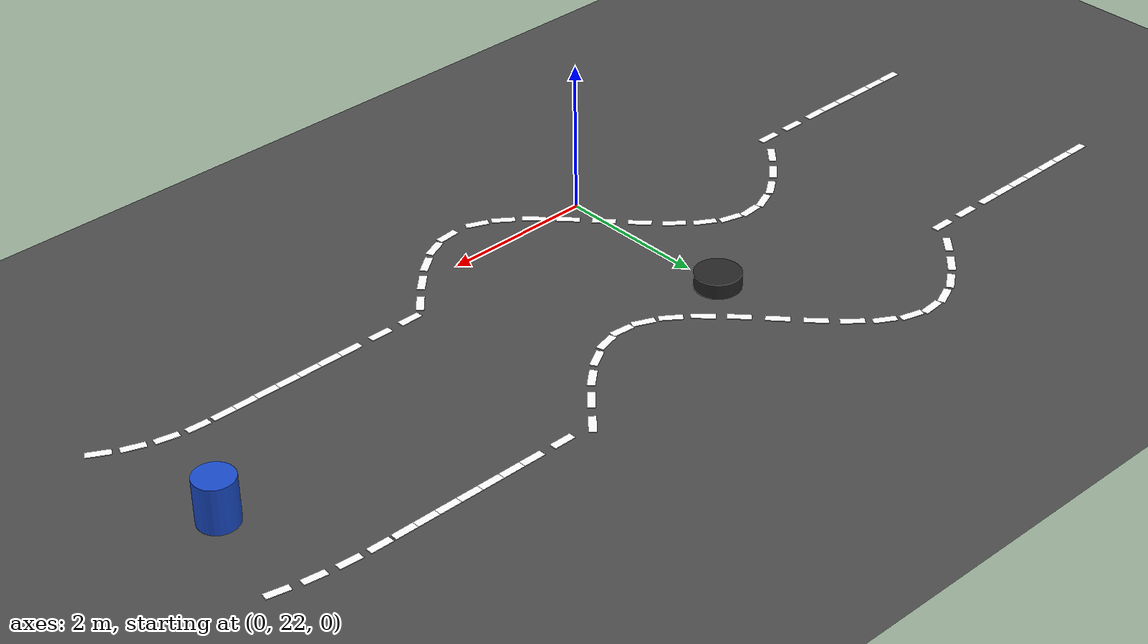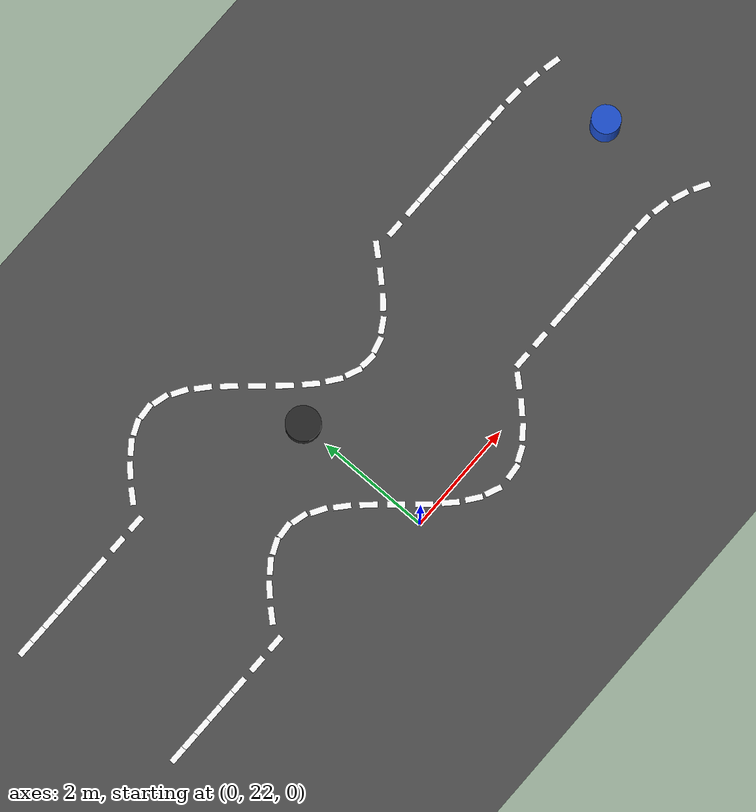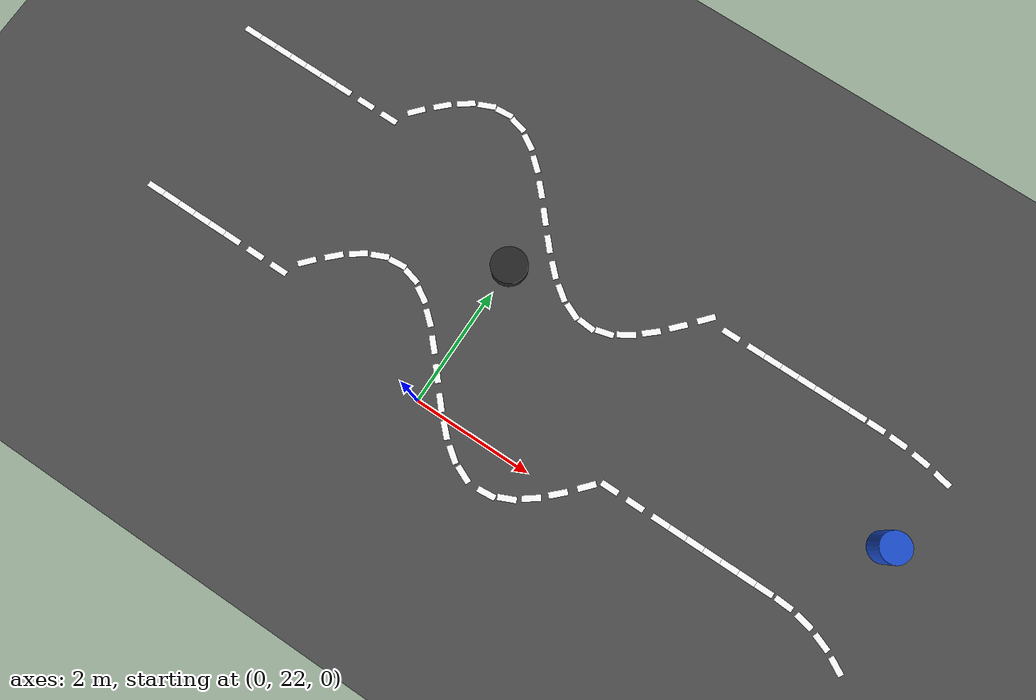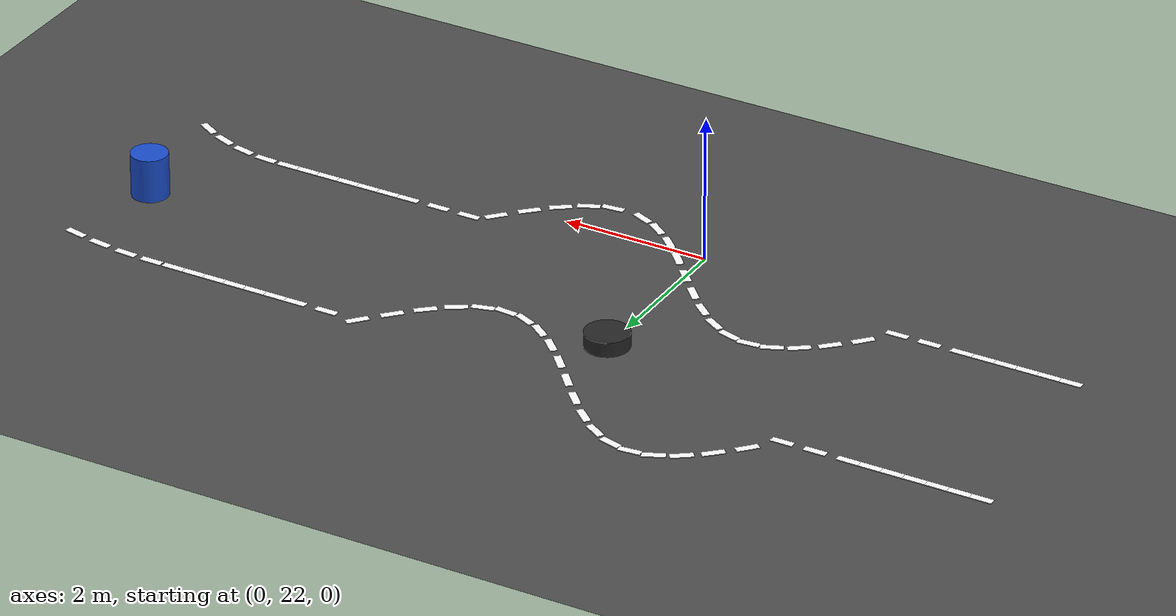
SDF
<sdf version="1.10">
 <world name="igvc_autonav">
  <model name="ground_plane">
   <static>true</static>
   <link name="link">
    <collision name="collision">
     <geometry><plane><normal>0 0 1</normal><size>60 60</size></plane></geometry>
     <surface><friction><ode><mu>0.80000000000000004</mu><mu2>0.80000000000000004</mu2></ode></friction></surface>
    </collision>
    <visual name="visual">
     <geometry><plane><normal>0 0 1</normal><size>60 60</size></plane></geometry>
     <material>
      <ambient>0.25 0.25 0.25 1</ambient>
      <diffuse>0.300000012 0.300000012 0.300000012 1</diffuse>
      <specular>0.100000001 0.100000001 0.100000001 1</specular>
     </material>
    </visual>
    <inertial>
     <mass>1</mass>
     <inertia><ixx>1</ixx><ixy>0</ixy><ixz>0</ixz><iyy>1</iyy><iyz>0</iyz><izz>1</izz></inertia>
    </inertial>
   </link>
  </model>
  <model name="lane_inner_80">
   <static>true</static>
   <pose>7.2774999999999999 22.148900000000001 0.01 0 0 2.6244000000000001</pose>
   <link name="link">
    <visual name="visual">
     <geometry><box><size>0.29999999999999999 0.10000000000000001 0.01</size></box></geometry>
     <material><ambient>1 1 1 1</ambient><diffuse>1 1 1 1</diffuse><emissive>1 1 1 1</emissive></material>
    </visual>
    <inertial>
     <mass>1</mass>
     <inertia><ixx>1</ixx><ixy>0</ixy><ixz>0</ixz><iyy>1</iyy><iyz>0</iyz><izz>1</izz></inertia>
    </inertial>
   </link>
  </model>
  <model name="lane_inner_81">
   <static>true</static>
   <pose>6.9344999999999999 22.3188 0.01 0 0 2.7776000000000001</pose>
   <link name="link">
    <visual name="visual">
     <geometry><box><size>0.29999999999999999 0.10000000000000001 0.01</size></box></geometry>
     <material><ambient>1 1 1 1</ambient><diffuse>1 1 1 1</diffuse><emissive>1 1 1 1</emissive></material>
    </visual>
    <inertial>
     <mass>1</mass>
     <inertia><ixx>1</ixx><ixy>0</ixy><ixz>0</ixz><iyy>1</iyy><iyz>0</iyz><izz>1</izz></inertia>
    </inertial>
   </link>
  </model>
  <model name="lane_inner_82">
   <static>true</static>
   <pose>6.5696000000000003 22.434200000000001 0.01 0 0 2.9308999999999998</pose>
   <link name="link">
    <visual name="visual">
     <geometry><box><size>0.29999999999999999 0.10000000000000001 0.01</size></box></geometry>
     <material><ambient>1 1 1 1</ambient><diffuse>1 1 1 1</diffuse><emissive>1 1 1 1</emissive></material>
    </visual>
    <inertial>
     <mass>1</mass>
     <inertia><ixx>1</ixx><ixy>0</ixy><ixz>0</ixz><iyy>1</iyy><iyz>0</iyz><izz>1</izz></inertia>
    </inertial>
   </link>
  </model>
  <model name="lane_inner_83">
   <static>true</static>
   <pose>6.1913999999999998 22.492699999999999 0.01 0 0 3.0840999999999998</pose>
   <link name="link">
    <visual name="visual">
     <geometry><box><size>0.29999999999999999 0.10000000000000001 0.01</size></box></geometry>
     <material><ambient>1 1 1 1</ambient><diffuse>1 1 1 1</diffuse><emissive>1 1 1 1</emissive></material>
    </visual>
    <inertial>
     <mass>1</mass>
     <inertia><ixx>1</ixx><ixy>0</ixy><ixz>0</ixz><iyy>1</iyy><iyz>0</iyz><izz>1</izz></inertia>
    </inertial>
   </link>
  </model>
  <model name="lane_inner_84">
   <static>true</static>
   <pose>5.8499999999999996 22.5 0.01 0 0 -3.1415899999999999</pose>
   <link name="link">
    <visual name="visual">
     <geometry><box><size>0.29999999999999999 0.10000000000000001 0.01</size></box></geometry>
     <material><ambient>1 1 1 1</ambient><diffuse>1 1 1 1</diffuse><emissive>1 1 1 1</emissive></material>
    </visual>
    <inertial>
     <mass>1</mass>
     <inertia><ixx>1</ixx><ixy>0</ixy><ixz>0</ixz><iyy>1</iyy><iyz>0</iyz><izz>1</izz></inertia>
    </inertial>
   </link>
  </model>
  <model name="lane_inner_85">
   <static>true</static>
   <pose>5.5499999999999998 22.5 0.01 0 0 -3.1415899999999999</pose>
   <link name="link">
    <visual name="visual">
     <geometry><box><size>0.29999999999999999 0.10000000000000001 0.01</size></box></geometry>
     <material><ambient>1 1 1 1</ambient><diffuse>1 1 1 1</diffuse><emissive>1 1 1 1</emissive></material>
    </visual>
    <inertial>
     <mass>1</mass>
     <inertia><ixx>1</ixx><ixy>0</ixy><ixz>0</ixz><iyy>1</iyy><iyz>0</iyz><izz>1</izz></inertia>
    </inertial>
   </link>
  </model>
  <model name="lane_inner_86">
   <static>true</static>
   <pose>5.25 22.5 0.01 0 0 -3.1415899999999999</pose>
   <link name="link">
    <visual name="visual">
     <geometry><box><size>0.29999999999999999 0.10000000000000001 0.01</size></box></geometry>
     <material><ambient>1 1 1 1</ambient><diffuse>1 1 1 1</diffuse><emissive>1 1 1 1</emissive></material>
    </visual>
    <inertial>
     <mass>1</mass>
     <inertia><ixx>1</ixx><ixy>0</ixy><ixz>0</ixz><iyy>1</iyy><iyz>0</iyz><izz>1</izz></inertia>
    </inertial>
   </link>
  </model>
  <model name="lane_inner_87">
   <static>true</static>
   <pose>4.9500000000000002 22.5 0.01 0 0 -3.1415899999999999</pose>
   <link name="link">
    <visual name="visual">
     <geometry><box><size>0.29999999999999999 0.10000000000000001 0.01</size></box></geometry>
     <material><ambient>1 1 1 1</ambient><diffuse>1 1 1 1</diffuse><emissive>1 1 1 1</emissive></material>
    </visual>
    <inertial>
     <mass>1</mass>
     <inertia><ixx>1</ixx><ixy>0</ixy><ixz>0</ixz><iyy>1</iyy><iyz>0</iyz><izz>1</izz></inertia>
    </inertial>
   </link>
  </model>
  <model name="lane_inner_88">
   <static>true</static>
   <pose>4.6500000000000004 22.5 0.01 0 0 -3.1415899999999999</pose>
   <link name="link">
    <visual name="visual">
     <geometry><box><size>0.29999999999999999 0.10000000000000001 0.01</size></box></geometry>
     <material><ambient>1 1 1 1</ambient><diffuse>1 1 1 1</diffuse><emissive>1 1 1 1</emissive></material>
    </visual>
    <inertial>
     <mass>1</mass>
     <inertia><ixx>1</ixx><ixy>0</ixy><ixz>0</ixz><iyy>1</iyy><iyz>0</iyz><izz>1</izz></inertia>
    </inertial>
   </link>
  </model>
  <model name="lane_inner_89">
   <static>true</static>
   <pose>4.3499999999999996 22.5 0.01 0 0 -3.1415899999999999</pose>
   <link name="link">
    <visual name="visual">
     <geometry><box><size>0.29999999999999999 0.10000000000000001 0.01</size></box></geometry>
     <material><ambient>1 1 1 1</ambient><diffuse>1 1 1 1</diffuse><emissive>1 1 1 1</emissive></material>
    </visual>
    <inertial>
     <mass>1</mass>
     <inertia><ixx>1</ixx><ixy>0</ixy><ixz>0</ixz><iyy>1</iyy><iyz>0</iyz><izz>1</izz></inertia>
    </inertial>
   </link>
  </model>
  <model name="lane_inner_90">
   <static>true</static>
   <pose>4.0499999999999998 22.5 0.01 0 0 -3.1415899999999999</pose>
   <link name="link">
    <visual name="visual">
     <geometry><box><size>0.29999999999999999 0.10000000000000001 0.01</size></box></geometry>
     <material><ambient>1 1 1 1</ambient><diffuse>1 1 1 1</diffuse><emissive>1 1 1 1</emissive></material>
    </visual>
    <inertial>
     <mass>1</mass>
     <inertia><ixx>1</ixx><ixy>0</ixy><ixz>0</ixz><iyy>1</iyy><iyz>0</iyz><izz>1</izz></inertia>
    </inertial>
   </link>
  </model>
  <model name="lane_inner_91">
   <static>true</static>
   <pose>3.6000000000000001 22.5 0.01 0 0 -3.1415899999999999</pose>
   <link name="link">
    <visual name="visual">
     <geometry><box><size>0.29999999999999999 0.10000000000000001 0.01</size></box></geometry>
     <material><ambient>1 1 1 1</ambient><diffuse>1 1 1 1</diffuse><emissive>1 1 1 1</emissive></material>
    </visual>
    <inertial>
     <mass>1</mass>
     <inertia><ixx>1</ixx><ixy>0</ixy><ixz>0</ixz><iyy>1</iyy><iyz>0</iyz><izz>1</izz></inertia>
    </inertial>
   </link>
  </model>
  <model name="lane_inner_92">
   <static>true</static>
   <pose>3.1499999999999999 22.5 0.01 0 0 3.1415899999999999</pose>
   <link name="link">
    <visual name="visual">
     <geometry><box><size>0.29999999999999999 0.10000000000000001 0.01</size></box></geometry>
     <material><ambient>1 1 1 1</ambient><diffuse>1 1 1 1</diffuse><emissive>1 1 1 1</emissive></material>
    </visual>
    <inertial>
     <mass>1</mass>
     <inertia><ixx>1</ixx><ixy>0</ixy><ixz>0</ixz><iyy>1</iyy><iyz>0</iyz><izz>1</izz></inertia>
    </inertial>
   </link>
  </model>
  <model name="lane_inner_93">
   <static>true</static>
   <pose>2.8500000000000001 22.3279 0.01 0 0 -2.3001</pose>
   <link name="link">
    <visual name="visual">
     <geometry><box><size>0.29999999999999999 0.10000000000000001 0.01</size></box></geometry>
     <material><ambient>1 1 1 1</ambient><diffuse>1 1 1 1</diffuse><emissive>1 1 1 1</emissive></material>
    </visual>
    <inertial>
     <mass>1</mass>
     <inertia><ixx>1</ixx><ixy>0</ixy><ixz>0</ixz><iyy>1</iyy><iyz>0</iyz><izz>1</izz></inertia>
    </inertial>
   </link>
  </model>
  <model name="lane_inner_94">
   <static>true</static>
   <pose>2.5499999999999998 22.000599999999999 0.01 0 0 -2.3656999999999999</pose>
   <link name="link">
    <visual name="visual">
     <geometry><box><size>0.29999999999999999 0.10000000000000001 0.01</size></box></geometry>
     <material><ambient>1 1 1 1</ambient><diffuse>1 1 1 1</diffuse><emissive>1 1 1 1</emissive></material>
    </visual>
    <inertial>
     <mass>1</mass>
     <inertia><ixx>1</ixx><ixy>0</ixy><ixz>0</ixz><iyy>1</iyy><iyz>0</iyz><izz>1</izz></inertia>
    </inertial>
   </link>
  </model>
  <model name="lane_inner_95">
   <static>true</static>
   <pose>2.25 21.722200000000001 0.01 0 0 -2.4998</pose>
   <link name="link">
    <visual name="visual">
     <geometry><box><size>0.29999999999999999 0.10000000000000001 0.01</size></box></geometry>
     <material><ambient>1 1 1 1</ambient><diffuse>1 1 1 1</diffuse><emissive>1 1 1 1</emissive></material>
    </visual>
    <inertial>
     <mass>1</mass>
     <inertia><ixx>1</ixx><ixy>0</ixy><ixz>0</ixz><iyy>1</iyy><iyz>0</iyz><izz>1</izz></inertia>
    </inertial>
   </link>
  </model>
  <model name="lane_inner_96">
   <static>true</static>
   <pose>1.95 21.5199 0.01 0 0 -2.7267999999999999</pose>
   <link name="link">
    <visual name="visual">
     <geometry><box><size>0.29999999999999999 0.10000000000000001 0.01</size></box></geometry>
     <material><ambient>1 1 1 1</ambient><diffuse>1 1 1 1</diffuse><emissive>1 1 1 1</emissive></material>
    </visual>
    <inertial>
     <mass>1</mass>
     <inertia><ixx>1</ixx><ixy>0</ixy><ixz>0</ixz><iyy>1</iyy><iyz>0</iyz><izz>1</izz></inertia>
    </inertial>
   </link>
  </model>
  <model name="lane_inner_97">
   <static>true</static>
   <pose>1.6499999999999999 21.413499999999999 0.01 0 0 -3.0516000000000001</pose>
   <link name="link">
    <visual name="visual">
     <geometry><box><size>0.29999999999999999 0.10000000000000001 0.01</size></box></geometry>
     <material><ambient>1 1 1 1</ambient><diffuse>1 1 1 1</diffuse><emissive>1 1 1 1</emissive></material>
    </visual>
    <inertial>
     <mass>1</mass>
     <inertia><ixx>1</ixx><ixy>0</ixy><ixz>0</ixz><iyy>1</iyy><iyz>0</iyz><izz>1</izz></inertia>
    </inertial>
   </link>
  </model>
  <model name="lane_inner_98">
   <static>true</static>
   <pose>1.2 21.453800000000001 0.01 0 0 2.7267999999999999</pose>
   <link name="link">
    <visual name="visual">
     <geometry><box><size>0.29999999999999999 0.10000000000000001 0.01</size></box></geometry>
     <material><ambient>1 1 1 1</ambient><diffuse>1 1 1 1</diffuse><emissive>1 1 1 1</emissive></material>
    </visual>
    <inertial>
     <mass>1</mass>
     <inertia><ixx>1</ixx><ixy>0</ixy><ixz>0</ixz><iyy>1</iyy><iyz>0</iyz><izz>1</izz></inertia>
    </inertial>
   </link>
  </model>
  <model name="lane_inner_99">
   <static>true</static>
   <pose>0.90000000000000002 21.610099999999999 0.01 0 0 2.4998</pose>
   <link name="link">
    <visual name="visual">
     <geometry><box><size>0.29999999999999999 0.10000000000000001 0.01</size></box></geometry>
     <material><ambient>1 1 1 1</ambient><diffuse>1 1 1 1</diffuse><emissive>1 1 1 1</emissive></material>
    </visual>
    <inertial>
     <mass>1</mass>
     <inertia><ixx>1</ixx><ixy>0</ixy><ixz>0</ixz><iyy>1</iyy><iyz>0</iyz><izz>1</izz></inertia>
    </inertial>
   </link>
  </model>
  <model name="lane_inner_100">
   <static>true</static>
   <pose>0.59999999999999998 21.853400000000001 0.01 0 0 2.3656999999999999</pose>
   <link name="link">
    <visual name="visual">
     <geometry><box><size>0.29999999999999999 0.10000000000000001 0.01</size></box></geometry>
     <material><ambient>1 1 1 1</ambient><diffuse>1 1 1 1</diffuse><emissive>1 1 1 1</emissive></material>
    </visual>
    <inertial>
     <mass>1</mass>
     <inertia><ixx>1</ixx><ixy>0</ixy><ixz>0</ixz><iyy>1</iyy><iyz>0</iyz><izz>1</izz></inertia>
    </inertial>
   </link>
  </model>
  <model name="lane_inner_101">
   <static>true</static>
   <pose>0.29999999999999999 22.1601 0.01 0 0 2.3001</pose>
   <link name="link">
    <visual name="visual">
     <geometry><box><size>0.29999999999999999 0.10000000000000001 0.01</size></box></geometry>
     <material><ambient>1 1 1 1</ambient><diffuse>1 1 1 1</diffuse><emissive>1 1 1 1</emissive></material>
    </visual>
    <inertial>
     <mass>1</mass>
     <inertia><ixx>1</ixx><ixy>0</ixy><ixz>0</ixz><iyy>1</iyy><iyz>0</iyz><izz>1</izz></inertia>
    </inertial>
   </link>
  </model>
  <model name="lane_inner_102">
   <static>true</static>
   <pose>0 22.5 0.01 0 0 2.2877999999999998</pose>
   <link name="link">
    <visual name="visual">
     <geometry><box><size>0.29999999999999999 0.10000000000000001 0.01</size></box></geometry>
     <material><ambient>1 1 1 1</ambient><diffuse>1 1 1 1</diffuse><emissive>1 1 1 1</emissive></material>
    </visual>
    <inertial>
     <mass>1</mass>
     <inertia><ixx>1</ixx><ixy>0</ixy><ixz>0</ixz><iyy>1</iyy><iyz>0</iyz><izz>1</izz></inertia>
    </inertial>
   </link>
  </model>
  <model name="lane_inner_103">
   <static>true</static>
   <pose>-0.29999999999999999 22.8399 0.01 0 0 2.3256000000000001</pose>
   <link name="link">
    <visual name="visual">
     <geometry><box><size>0.29999999999999999 0.10000000000000001 0.01</size></box></geometry>
     <material><ambient>1 1 1 1</ambient><diffuse>1 1 1 1</diffuse><emissive>1 1 1 1</emissive></material>
    </visual>
    <inertial>
     <mass>1</mass>
     <inertia><ixx>1</ixx><ixy>0</ixy><ixz>0</ixz><iyy>1</iyy><iyz>0</iyz><izz>1</izz></inertia>
    </inertial>
   </link>
  </model>
  <model name="lane_inner_104">
   <static>true</static>
   <pose>-0.59999999999999998 23.146599999999999 0.01 0 0 2.4226999999999999</pose>
   <link name="link">
    <visual name="visual">
     <geometry><box><size>0.29999999999999999 0.10000000000000001 0.01</size></box></geometry>
     <material><ambient>1 1 1 1</ambient><diffuse>1 1 1 1</diffuse><emissive>1 1 1 1</emissive></material>
    </visual>
    <inertial>
     <mass>1</mass>
     <inertia><ixx>1</ixx><ixy>0</ixy><ixz>0</ixz><iyy>1</iyy><iyz>0</iyz><izz>1</izz></inertia>
    </inertial>
   </link>
  </model>
  <model name="lane_inner_105">
   <static>true</static>
   <pose>-0.90000000000000002 23.389900000000001 0.01 0 0 2.6002000000000001</pose>
   <link name="link">
    <visual name="visual">
     <geometry><box><size>0.29999999999999999 0.10000000000000001 0.01</size></box></geometry>
     <material><ambient>1 1 1 1</ambient><diffuse>1 1 1 1</diffuse><emissive>1 1 1 1</emissive></material>
    </visual>
    <inertial>
     <mass>1</mass>
     <inertia><ixx>1</ixx><ixy>0</ixy><ixz>0</ixz><iyy>1</iyy><iyz>0</iyz><izz>1</izz></inertia>
    </inertial>
   </link>
  </model>
  <model name="lane_inner_106">
   <static>true</static>
   <pose>-1.2 23.546199999999999 0.01 0 0 2.8792</pose>
   <link name="link">
    <visual name="visual">
     <geometry><box><size>0.29999999999999999 0.10000000000000001 0.01</size></box></geometry>
     <material><ambient>1 1 1 1</ambient><diffuse>1 1 1 1</diffuse><emissive>1 1 1 1</emissive></material>
    </visual>
    <inertial>
     <mass>1</mass>
     <inertia><ixx>1</ixx><ixy>0</ixy><ixz>0</ixz><iyy>1</iyy><iyz>0</iyz><izz>1</izz></inertia>
    </inertial>
   </link>
  </model>
  <model name="lane_inner_107">
   <static>true</static>
   <pose>-1.5 23.600000000000001 0.01 0 0 -3.0516000000000001</pose>
   <link name="link">
    <visual name="visual">
     <geometry><box><size>0.29999999999999999 0.10000000000000001 0.01</size></box></geometry>
     <material><ambient>1 1 1 1</ambient><diffuse>1 1 1 1</diffuse><emissive>1 1 1 1</emissive></material>
    </visual>
    <inertial>
     <mass>1</mass>
     <inertia><ixx>1</ixx><ixy>0</ixy><ixz>0</ixz><iyy>1</iyy><iyz>0</iyz><izz>1</izz></inertia>
    </inertial>
   </link>
  </model>
  <model name="lane_inner_108">
   <static>true</static>
   <pose>-1.8 23.546199999999999 0.01 0 0 -2.7267999999999999</pose>
   <link name="link">
    <visual name="visual">
     <geometry><box><size>0.29999999999999999 0.10000000000000001 0.01</size></box></geometry>
     <material><ambient>1 1 1 1</ambient><diffuse>1 1 1 1</diffuse><emissive>1 1 1 1</emissive></material>
    </visual>
    <inertial>
     <mass>1</mass>
     <inertia><ixx>1</ixx><ixy>0</ixy><ixz>0</ixz><iyy>1</iyy><iyz>0</iyz><izz>1</izz></inertia>
    </inertial>
   </link>
  </model>
  <model name="lane_inner_109">
   <static>true</static>
   <pose>-2.1000000000000001 23.389900000000001 0.01 0 0 -2.4998</pose>
   <link name="link">
    <visual name="visual">
     <geometry><box><size>0.29999999999999999 0.10000000000000001 0.01</size></box></geometry>
     <material><ambient>1 1 1 1</ambient><diffuse>1 1 1 1</diffuse><emissive>1 1 1 1</emissive></material>
    </visual>
    <inertial>
     <mass>1</mass>
     <inertia><ixx>1</ixx><ixy>0</ixy><ixz>0</ixz><iyy>1</iyy><iyz>0</iyz><izz>1</izz></inertia>
    </inertial>
   </link>
  </model>
  <model name="lane_inner_110">
   <static>true</static>
   <pose>-2.3999999999999999 23.146599999999999 0.01 0 0 -2.3656999999999999</pose>
   <link name="link">
    <visual name="visual">
     <geometry><box><size>0.29999999999999999 0.10000000000000001 0.01</size></box></geometry>
     <material><ambient>1 1 1 1</ambient><diffuse>1 1 1 1</diffuse><emissive>1 1 1 1</emissive></material>
    </visual>
    <inertial>
     <mass>1</mass>
     <inertia><ixx>1</ixx><ixy>0</ixy><ixz>0</ixz><iyy>1</iyy><iyz>0</iyz><izz>1</izz></inertia>
    </inertial>
   </link>
  </model>
  <model name="lane_inner_111">
   <static>true</static>
   <pose>-2.7000000000000002 22.8399 0.01 0 0 -2.3001</pose>
   <link name="link">
    <visual name="visual">
     <geometry><box><size>0.29999999999999999 0.10000000000000001 0.01</size></box></geometry>
     <material><ambient>1 1 1 1</ambient><diffuse>1 1 1 1</diffuse><emissive>1 1 1 1</emissive></material>
    </visual>
    <inertial>
     <mass>1</mass>
     <inertia><ixx>1</ixx><ixy>0</ixy><ixz>0</ixz><iyy>1</iyy><iyz>0</iyz><izz>1</izz></inertia>
    </inertial>
   </link>
  </model>
  <model name="lane_inner_112">
   <static>true</static>
   <pose>-3 22.5 0.01 0 0 -3.1415899999999999</pose>
   <link name="link">
    <visual name="visual">
     <geometry><box><size>0.29999999999999999 0.10000000000000001 0.01</size></box></geometry>
     <material><ambient>1 1 1 1</ambient><diffuse>1 1 1 1</diffuse><emissive>1 1 1 1</emissive></material>
    </visual>
    <inertial>
     <mass>1</mass>
     <inertia><ixx>1</ixx><ixy>0</ixy><ixz>0</ixz><iyy>1</iyy><iyz>0</iyz><izz>1</izz></inertia>
    </inertial>
   </link>
  </model>
  <model name="lane_inner_113">
   <static>true</static>
   <pose>-3.4500000000000002 22.5 0.01 0 0 -3.1415899999999999</pose>
   <link name="link">
    <visual name="visual">
     <geometry><box><size>0.29999999999999999 0.10000000000000001 0.01</size></box></geometry>
     <material><ambient>1 1 1 1</ambient><diffuse>1 1 1 1</diffuse><emissive>1 1 1 1</emissive></material>
    </visual>
    <inertial>
     <mass>1</mass>
     <inertia><ixx>1</ixx><ixy>0</ixy><ixz>0</ixz><iyy>1</iyy><iyz>0</iyz><izz>1</izz></inertia>
    </inertial>
   </link>
  </model>
  <model name="lane_inner_114">
   <static>true</static>
   <pose>-3.8999999999999999 22.5 0.01 0 0 -3.1415899999999999</pose>
   <link name="link">
    <visual name="visual">
     <geometry><box><size>0.29999999999999999 0.10000000000000001 0.01</size></box></geometry>
     <material><ambient>1 1 1 1</ambient><diffuse>1 1 1 1</diffuse><emissive>1 1 1 1</emissive></material>
    </visual>
    <inertial>
     <mass>1</mass>
     <inertia><ixx>1</ixx><ixy>0</ixy><ixz>0</ixz><iyy>1</iyy><iyz>0</iyz><izz>1</izz></inertia>
    </inertial>
   </link>
  </model>
  <model name="lane_inner_115">
   <static>true</static>
   <pose>-4.2000000000000002 22.5 0.01 0 0 -3.1415899999999999</pose>
   <link name="link">
    <visual name="visual">
     <geometry><box><size>0.29999999999999999 0.10000000000000001 0.01</size></box></geometry>
     <material><ambient>1 1 1 1</ambient><diffuse>1 1 1 1</diffuse><emissive>1 1 1 1</emissive></material>
    </visual>
    <inertial>
     <mass>1</mass>
     <inertia><ixx>1</ixx><ixy>0</ixy><ixz>0</ixz><iyy>1</iyy><iyz>0</iyz><izz>1</izz></inertia>
    </inertial>
   </link>
  </model>
  <model name="lane_inner_116">
   <static>true</static>
   <pose>-4.5 22.5 0.01 0 0 -3.1415899999999999</pose>
   <link name="link">
    <visual name="visual">
     <geometry><box><size>0.29999999999999999 0.10000000000000001 0.01</size></box></geometry>
     <material><ambient>1 1 1 1</ambient><diffuse>1 1 1 1</diffuse><emissive>1 1 1 1</emissive></material>
    </visual>
    <inertial>
     <mass>1</mass>
     <inertia><ixx>1</ixx><ixy>0</ixy><ixz>0</ixz><iyy>1</iyy><iyz>0</iyz><izz>1</izz></inertia>
    </inertial>
   </link>
  </model>
  <model name="lane_inner_117">
   <static>true</static>
   <pose>-4.7999999999999998 22.5 0.01 0 0 -3.1415899999999999</pose>
   <link name="link">
    <visual name="visual">
     <geometry><box><size>0.29999999999999999 0.10000000000000001 0.01</size></box></geometry>
     <material><ambient>1 1 1 1</ambient><diffuse>1 1 1 1</diffuse><emissive>1 1 1 1</emissive></material>
    </visual>
    <inertial>
     <mass>1</mass>
     <inertia><ixx>1</ixx><ixy>0</ixy><ixz>0</ixz><iyy>1</iyy><iyz>0</iyz><izz>1</izz></inertia>
    </inertial>
   </link>
  </model>
  <model name="lane_inner_118">
   <static>true</static>
   <pose>-5.0999999999999996 22.5 0.01 0 0 -3.1415899999999999</pose>
   <link name="link">
    <visual name="visual">
     <geometry><box><size>0.29999999999999999 0.10000000000000001 0.01</size></box></geometry>
     <material><ambient>1 1 1 1</ambient><diffuse>1 1 1 1</diffuse><emissive>1 1 1 1</emissive></material>
    </visual>
    <inertial>
     <mass>1</mass>
     <inertia><ixx>1</ixx><ixy>0</ixy><ixz>0</ixz><iyy>1</iyy><iyz>0</iyz><izz>1</izz></inertia>
    </inertial>
   </link>
  </model>
  <model name="lane_inner_119">
   <static>true</static>
   <pose>-5.4000000000000004 22.5 0.01 0 0 -3.1415899999999999</pose>
   <link name="link">
    <visual name="visual">
     <geometry><box><size>0.29999999999999999 0.10000000000000001 0.01</size></box></geometry>
     <material><ambient>1 1 1 1</ambient><diffuse>1 1 1 1</diffuse><emissive>1 1 1 1</emissive></material>
    </visual>
    <inertial>
     <mass>1</mass>
     <inertia><ixx>1</ixx><ixy>0</ixy><ixz>0</ixz><iyy>1</iyy><iyz>0</iyz><izz>1</izz></inertia>
    </inertial>
   </link>
  </model>
  <model name="lane_outer_102">
   <static>true</static>
   <pose>7.2531999999999996 25.3553 0.01 0 0 2.9308999999999998</pose>
   <link name="link">
    <visual name="visual">
     <geometry><box><size>0.29999999999999999 0.10000000000000001 0.01</size></box></geometry>
     <material><ambient>1 1 1 1</ambient><diffuse>1 1 1 1</diffuse><emissive>1 1 1 1</emissive></material>
    </visual>
    <inertial>
     <mass>1</mass>
     <inertia><ixx>1</ixx><ixy>0</ixy><ixz>0</ixz><iyy>1</iyy><iyz>0</iyz><izz>1</izz></inertia>
    </inertial>
   </link>
  </model>
  <model name="lane_outer_103">
   <static>true</static>
   <pose>6.8395999999999999 25.435500000000001 0.01 0 0 3.0074999999999998</pose>
   <link name="link">
    <visual name="visual">
     <geometry><box><size>0.29999999999999999 0.10000000000000001 0.01</size></box></geometry>
     <material><ambient>1 1 1 1</ambient><diffuse>1 1 1 1</diffuse><emissive>1 1 1 1</emissive></material>
    </visual>
    <inertial>
     <mass>1</mass>
     <inertia><ixx>1</ixx><ixy>0</ixy><ixz>0</ixz><iyy>1</iyy><iyz>0</iyz><izz>1</izz></inertia>
    </inertial>
   </link>
  </model>
  <model name="lane_outer_104">
   <static>true</static>
   <pose>6.4210000000000003 25.483899999999998 0.01 0 0 3.0840999999999998</pose>
   <link name="link">
    <visual name="visual">
     <geometry><box><size>0.29999999999999999 0.10000000000000001 0.01</size></box></geometry>
     <material><ambient>1 1 1 1</ambient><diffuse>1 1 1 1</diffuse><emissive>1 1 1 1</emissive></material>
    </visual>
    <inertial>
     <mass>1</mass>
     <inertia><ixx>1</ixx><ixy>0</ixy><ixz>0</ixz><iyy>1</iyy><iyz>0</iyz><izz>1</izz></inertia>
    </inertial>
   </link>
  </model>
  <model name="lane_outer_105">
   <static>true</static>
   <pose>6.0286999999999997 25.499700000000001 0.01 0 0 3.1320000000000001</pose>
   <link name="link">
    <visual name="visual">
     <geometry><box><size>0.29999999999999999 0.10000000000000001 0.01</size></box></geometry>
     <material><ambient>1 1 1 1</ambient><diffuse>1 1 1 1</diffuse><emissive>1 1 1 1</emissive></material>
    </visual>
    <inertial>
     <mass>1</mass>
     <inertia><ixx>1</ixx><ixy>0</ixy><ixz>0</ixz><iyy>1</iyy><iyz>0</iyz><izz>1</izz></inertia>
    </inertial>
   </link>
  </model>
  <model name="lane_outer_106">
   <static>true</static>
   <pose>5.7000000000000002 25.5 0.01 0 0 -3.1415899999999999</pose>
   <link name="link">
    <visual name="visual">
     <geometry><box><size>0.29999999999999999 0.10000000000000001 0.01</size></box></geometry>
     <material><ambient>1 1 1 1</ambient><diffuse>1 1 1 1</diffuse><emissive>1 1 1 1</emissive></material>
    </visual>
    <inertial>
     <mass>1</mass>
     <inertia><ixx>1</ixx><ixy>0</ixy><ixz>0</ixz><iyy>1</iyy><iyz>0</iyz><izz>1</izz></inertia>
    </inertial>
   </link>
  </model>
  <model name="lane_outer_107">
   <static>true</static>
   <pose>5.4000000000000004 25.5 0.01 0 0 -3.1415899999999999</pose>
   <link name="link">
    <visual name="visual">
     <geometry><box><size>0.29999999999999999 0.10000000000000001 0.01</size></box></geometry>
     <material><ambient>1 1 1 1</ambient><diffuse>1 1 1 1</diffuse><emissive>1 1 1 1</emissive></material>
    </visual>
    <inertial>
     <mass>1</mass>
     <inertia><ixx>1</ixx><ixy>0</ixy><ixz>0</ixz><iyy>1</iyy><iyz>0</iyz><izz>1</izz></inertia>
    </inertial>
   </link>
  </model>
  <model name="lane_outer_108">
   <static>true</static>
   <pose>5.0999999999999996 25.5 0.01 0 0 -3.1415899999999999</pose>
   <link name="link">
    <visual name="visual">
     <geometry><box><size>0.29999999999999999 0.10000000000000001 0.01</size></box></geometry>
     <material><ambient>1 1 1 1</ambient><diffuse>1 1 1 1</diffuse><emissive>1 1 1 1</emissive></material>
    </visual>
    <inertial>
     <mass>1</mass>
     <inertia><ixx>1</ixx><ixy>0</ixy><ixz>0</ixz><iyy>1</iyy><iyz>0</iyz><izz>1</izz></inertia>
    </inertial>
   </link>
  </model>
  <model name="lane_outer_109">
   <static>true</static>
   <pose>4.7999999999999998 25.5 0.01 0 0 -3.1415899999999999</pose>
   <link name="link">
    <visual name="visual">
     <geometry><box><size>0.29999999999999999 0.10000000000000001 0.01</size></box></geometry>
     <material><ambient>1 1 1 1</ambient><diffuse>1 1 1 1</diffuse><emissive>1 1 1 1</emissive></material>
    </visual>
    <inertial>
     <mass>1</mass>
     <inertia><ixx>1</ixx><ixy>0</ixy><ixz>0</ixz><iyy>1</iyy><iyz>0</iyz><izz>1</izz></inertia>
    </inertial>
   </link>
  </model>
  <model name="lane_outer_110">
   <static>true</static>
   <pose>4.5 25.5 0.01 0 0 -3.1415899999999999</pose>
   <link name="link">
    <visual name="visual">
     <geometry><box><size>0.29999999999999999 0.10000000000000001 0.01</size></box></geometry>
     <material><ambient>1 1 1 1</ambient><diffuse>1 1 1 1</diffuse><emissive>1 1 1 1</emissive></material>
    </visual>
    <inertial>
     <mass>1</mass>
     <inertia><ixx>1</ixx><ixy>0</ixy><ixz>0</ixz><iyy>1</iyy><iyz>0</iyz><izz>1</izz></inertia>
    </inertial>
   </link>
  </model>
  <model name="lane_outer_111">
   <static>true</static>
   <pose>4.2000000000000002 25.5 0.01 0 0 -3.1415899999999999</pose>
   <link name="link">
    <visual name="visual">
     <geometry><box><size>0.29999999999999999 0.10000000000000001 0.01</size></box></geometry>
     <material><ambient>1 1 1 1</ambient><diffuse>1 1 1 1</diffuse><emissive>1 1 1 1</emissive></material>
    </visual>
    <inertial>
     <mass>1</mass>
     <inertia><ixx>1</ixx><ixy>0</ixy><ixz>0</ixz><iyy>1</iyy><iyz>0</iyz><izz>1</izz></inertia>
    </inertial>
   </link>
  </model>
  <model name="lane_outer_112">
   <static>true</static>
   <pose>3.8999999999999999 25.5 0.01 0 0 -3.1415899999999999</pose>
   <link name="link">
    <visual name="visual">
     <geometry><box><size>0.29999999999999999 0.10000000000000001 0.01</size></box></geometry>
     <material><ambient>1 1 1 1</ambient><diffuse>1 1 1 1</diffuse><emissive>1 1 1 1</emissive></material>
    </visual>
    <inertial>
     <mass>1</mass>
     <inertia><ixx>1</ixx><ixy>0</ixy><ixz>0</ixz><iyy>1</iyy><iyz>0</iyz><izz>1</izz></inertia>
    </inertial>
   </link>
  </model>
  <model name="lane_outer_113">
   <static>true</static>
   <pose>3.4500000000000002 25.5 0.01 0 0 -3.1415899999999999</pose>
   <link name="link">
    <visual name="visual">
     <geometry><box><size>0.29999999999999999 0.10000000000000001 0.01</size></box></geometry>
     <material><ambient>1 1 1 1</ambient><diffuse>1 1 1 1</diffuse><emissive>1 1 1 1</emissive></material>
    </visual>
    <inertial>
     <mass>1</mass>
     <inertia><ixx>1</ixx><ixy>0</ixy><ixz>0</ixz><iyy>1</iyy><iyz>0</iyz><izz>1</izz></inertia>
    </inertial>
   </link>
  </model>
  <model name="lane_outer_114">
   <static>true</static>
   <pose>3 25.5 0.01 0 0 -2.2877999999999998</pose>
   <link name="link">
    <visual name="visual">
     <geometry><box><size>0.29999999999999999 0.10000000000000001 0.01</size></box></geometry>
     <material><ambient>1 1 1 1</ambient><diffuse>1 1 1 1</diffuse><emissive>1 1 1 1</emissive></material>
    </visual>
    <inertial>
     <mass>1</mass>
     <inertia><ixx>1</ixx><ixy>0</ixy><ixz>0</ixz><iyy>1</iyy><iyz>0</iyz><izz>1</izz></inertia>
    </inertial>
   </link>
  </model>
  <model name="lane_outer_115">
   <static>true</static>
   <pose>2.7000000000000002 25.1601 0.01 0 0 -2.3256000000000001</pose>
   <link name="link">
    <visual name="visual">
     <geometry><box><size>0.29999999999999999 0.10000000000000001 0.01</size></box></geometry>
     <material><ambient>1 1 1 1</ambient><diffuse>1 1 1 1</diffuse><emissive>1 1 1 1</emissive></material>
    </visual>
    <inertial>
     <mass>1</mass>
     <inertia><ixx>1</ixx><ixy>0</ixy><ixz>0</ixz><iyy>1</iyy><iyz>0</iyz><izz>1</izz></inertia>
    </inertial>
   </link>
  </model>
  <model name="lane_outer_116">
   <static>true</static>
   <pose>2.3999999999999999 24.853400000000001 0.01 0 0 -2.4226999999999999</pose>
   <link name="link">
    <visual name="visual">
     <geometry><box><size>0.29999999999999999 0.10000000000000001 0.01</size></box></geometry>
     <material><ambient>1 1 1 1</ambient><diffuse>1 1 1 1</diffuse><emissive>1 1 1 1</emissive></material>
    </visual>
    <inertial>
     <mass>1</mass>
     <inertia><ixx>1</ixx><ixy>0</ixy><ixz>0</ixz><iyy>1</iyy><iyz>0</iyz><izz>1</izz></inertia>
    </inertial>
   </link>
  </model>
  <model name="lane_outer_117">
   <static>true</static>
   <pose>2.1000000000000001 24.610099999999999 0.01 0 0 -2.6002000000000001</pose>
   <link name="link">
    <visual name="visual">
     <geometry><box><size>0.29999999999999999 0.10000000000000001 0.01</size></box></geometry>
     <material><ambient>1 1 1 1</ambient><diffuse>1 1 1 1</diffuse><emissive>1 1 1 1</emissive></material>
    </visual>
    <inertial>
     <mass>1</mass>
     <inertia><ixx>1</ixx><ixy>0</ixy><ixz>0</ixz><iyy>1</iyy><iyz>0</iyz><izz>1</izz></inertia>
    </inertial>
   </link>
  </model>
  <model name="lane_outer_118">
   <static>true</static>
   <pose>1.8 24.453800000000001 0.01 0 0 -2.8792</pose>
   <link name="link">
    <visual name="visual">
     <geometry><box><size>0.29999999999999999 0.10000000000000001 0.01</size></box></geometry>
     <material><ambient>1 1 1 1</ambient><diffuse>1 1 1 1</diffuse><emissive>1 1 1 1</emissive></material>
    </visual>
    <inertial>
     <mass>1</mass>
     <inertia><ixx>1</ixx><ixy>0</ixy><ixz>0</ixz><iyy>1</iyy><iyz>0</iyz><izz>1</izz></inertia>
    </inertial>
   </link>
  </model>
  <model name="lane_outer_119">
   <static>true</static>
   <pose>1.5 24.399999999999999 0.01 0 0 3.0516000000000001</pose>
   <link name="link">
    <visual name="visual">
     <geometry><box><size>0.29999999999999999 0.10000000000000001 0.01</size></box></geometry>
     <material><ambient>1 1 1 1</ambient><diffuse>1 1 1 1</diffuse><emissive>1 1 1 1</emissive></material>
    </visual>
    <inertial>
     <mass>1</mass>
     <inertia><ixx>1</ixx><ixy>0</ixy><ixz>0</ixz><iyy>1</iyy><iyz>0</iyz><izz>1</izz></inertia>
    </inertial>
   </link>
  </model>
  <model name="lane_outer_120">
   <static>true</static>
   <pose>1.2 24.453800000000001 0.01 0 0 2.7267999999999999</pose>
   <link name="link">
    <visual name="visual">
     <geometry><box><size>0.29999999999999999 0.10000000000000001 0.01</size></box></geometry>
     <material><ambient>1 1 1 1</ambient><diffuse>1 1 1 1</diffuse><emissive>1 1 1 1</emissive></material>
    </visual>
    <inertial>
     <mass>1</mass>
     <inertia><ixx>1</ixx><ixy>0</ixy><ixz>0</ixz><iyy>1</iyy><iyz>0</iyz><izz>1</izz></inertia>
    </inertial>
   </link>
  </model>
  <model name="lane_outer_121">
   <static>true</static>
   <pose>0.90000000000000002 24.610099999999999 0.01 0 0 2.4998</pose>
   <link name="link">
    <visual name="visual">
     <geometry><box><size>0.29999999999999999 0.10000000000000001 0.01</size></box></geometry>
     <material><ambient>1 1 1 1</ambient><diffuse>1 1 1 1</diffuse><emissive>1 1 1 1</emissive></material>
    </visual>
    <inertial>
     <mass>1</mass>
     <inertia><ixx>1</ixx><ixy>0</ixy><ixz>0</ixz><iyy>1</iyy><iyz>0</iyz><izz>1</izz></inertia>
    </inertial>
   </link>
  </model>
  <model name="lane_outer_122">
   <static>true</static>
   <pose>0.59999999999999998 24.853400000000001 0.01 0 0 2.3656999999999999</pose>
   <link name="link">
    <visual name="visual">
     <geometry><box><size>0.29999999999999999 0.10000000000000001 0.01</size></box></geometry>
     <material><ambient>1 1 1 1</ambient><diffuse>1 1 1 1</diffuse><emissive>1 1 1 1</emissive></material>
    </visual>
    <inertial>
     <mass>1</mass>
     <inertia><ixx>1</ixx><ixy>0</ixy><ixz>0</ixz><iyy>1</iyy><iyz>0</iyz><izz>1</izz></inertia>
    </inertial>
   </link>
  </model>
  <model name="lane_outer_123">
   <static>true</static>
   <pose>0.29999999999999999 25.1601 0.01 0 0 2.3001</pose>
   <link name="link">
    <visual name="visual">
     <geometry><box><size>0.29999999999999999 0.10000000000000001 0.01</size></box></geometry>
     <material><ambient>1 1 1 1</ambient><diffuse>1 1 1 1</diffuse><emissive>1 1 1 1</emissive></material>
    </visual>
    <inertial>
     <mass>1</mass>
     <inertia><ixx>1</ixx><ixy>0</ixy><ixz>0</ixz><iyy>1</iyy><iyz>0</iyz><izz>1</izz></inertia>
    </inertial>
   </link>
  </model>
  <model name="lane_outer_124">
   <static>true</static>
   <pose>0 25.5 0.01 0 0 2.2877999999999998</pose>
   <link name="link">
    <visual name="visual">
     <geometry><box><size>0.29999999999999999 0.10000000000000001 0.01</size></box></geometry>
     <material><ambient>1 1 1 1</ambient><diffuse>1 1 1 1</diffuse><emissive>1 1 1 1</emissive></material>
    </visual>
    <inertial>
     <mass>1</mass>
     <inertia><ixx>1</ixx><ixy>0</ixy><ixz>0</ixz><iyy>1</iyy><iyz>0</iyz><izz>1</izz></inertia>
    </inertial>
   </link>
  </model>
  <model name="lane_outer_125">
   <static>true</static>
   <pose>-0.29999999999999999 25.8399 0.01 0 0 2.3256000000000001</pose>
   <link name="link">
    <visual name="visual">
     <geometry><box><size>0.29999999999999999 0.10000000000000001 0.01</size></box></geometry>
     <material><ambient>1 1 1 1</ambient><diffuse>1 1 1 1</diffuse><emissive>1 1 1 1</emissive></material>
    </visual>
    <inertial>
     <mass>1</mass>
     <inertia><ixx>1</ixx><ixy>0</ixy><ixz>0</ixz><iyy>1</iyy><iyz>0</iyz><izz>1</izz></inertia>
    </inertial>
   </link>
  </model>
  <model name="lane_outer_126">
   <static>true</static>
   <pose>-0.59999999999999998 26.146599999999999 0.01 0 0 2.4226999999999999</pose>
   <link name="link">
    <visual name="visual">
     <geometry><box><size>0.29999999999999999 0.10000000000000001 0.01</size></box></geometry>
     <material><ambient>1 1 1 1</ambient><diffuse>1 1 1 1</diffuse><emissive>1 1 1 1</emissive></material>
    </visual>
    <inertial>
     <mass>1</mass>
     <inertia><ixx>1</ixx><ixy>0</ixy><ixz>0</ixz><iyy>1</iyy><iyz>0</iyz><izz>1</izz></inertia>
    </inertial>
   </link>
  </model>
  <model name="lane_outer_127">
   <static>true</static>
   <pose>-0.90000000000000002 26.389900000000001 0.01 0 0 2.6002000000000001</pose>
   <link name="link">
    <visual name="visual">
     <geometry><box><size>0.29999999999999999 0.10000000000000001 0.01</size></box></geometry>
     <material><ambient>1 1 1 1</ambient><diffuse>1 1 1 1</diffuse><emissive>1 1 1 1</emissive></material>
    </visual>
    <inertial>
     <mass>1</mass>
     <inertia><ixx>1</ixx><ixy>0</ixy><ixz>0</ixz><iyy>1</iyy><iyz>0</iyz><izz>1</izz></inertia>
    </inertial>
   </link>
  </model>
  <model name="lane_outer_128">
   <static>true</static>
   <pose>-1.2 26.546199999999999 0.01 0 0 2.8792</pose>
   <link name="link">
    <visual name="visual">
     <geometry><box><size>0.29999999999999999 0.10000000000000001 0.01</size></box></geometry>
     <material><ambient>1 1 1 1</ambient><diffuse>1 1 1 1</diffuse><emissive>1 1 1 1</emissive></material>
    </visual>
    <inertial>
     <mass>1</mass>
     <inertia><ixx>1</ixx><ixy>0</ixy><ixz>0</ixz><iyy>1</iyy><iyz>0</iyz><izz>1</izz></inertia>
    </inertial>
   </link>
  </model>
  <model name="lane_outer_129">
   <static>true</static>
   <pose>-1.5 26.600000000000001 0.01 0 0 -3.0516000000000001</pose>
   <link name="link">
    <visual name="visual">
     <geometry><box><size>0.29999999999999999 0.10000000000000001 0.01</size></box></geometry>
     <material><ambient>1 1 1 1</ambient><diffuse>1 1 1 1</diffuse><emissive>1 1 1 1</emissive></material>
    </visual>
    <inertial>
     <mass>1</mass>
     <inertia><ixx>1</ixx><ixy>0</ixy><ixz>0</ixz><iyy>1</iyy><iyz>0</iyz><izz>1</izz></inertia>
    </inertial>
   </link>
  </model>
  <model name="lane_outer_130">
   <static>true</static>
   <pose>-1.8 26.546199999999999 0.01 0 0 -2.7267999999999999</pose>
   <link name="link">
    <visual name="visual">
     <geometry><box><size>0.29999999999999999 0.10000000000000001 0.01</size></box></geometry>
     <material><ambient>1 1 1 1</ambient><diffuse>1 1 1 1</diffuse><emissive>1 1 1 1</emissive></material>
    </visual>
    <inertial>
     <mass>1</mass>
     <inertia><ixx>1</ixx><ixy>0</ixy><ixz>0</ixz><iyy>1</iyy><iyz>0</iyz><izz>1</izz></inertia>
    </inertial>
   </link>
  </model>
  <model name="lane_outer_131">
   <static>true</static>
   <pose>-2.1000000000000001 26.389900000000001 0.01 0 0 -2.4998</pose>
   <link name="link">
    <visual name="visual">
     <geometry><box><size>0.29999999999999999 0.10000000000000001 0.01</size></box></geometry>
     <material><ambient>1 1 1 1</ambient><diffuse>1 1 1 1</diffuse><emissive>1 1 1 1</emissive></material>
    </visual>
    <inertial>
     <mass>1</mass>
     <inertia><ixx>1</ixx><ixy>0</ixy><ixz>0</ixz><iyy>1</iyy><iyz>0</iyz><izz>1</izz></inertia>
    </inertial>
   </link>
  </model>
  <model name="lane_outer_132">
   <static>true</static>
   <pose>-2.3999999999999999 26.146599999999999 0.01 0 0 -2.3656999999999999</pose>
   <link name="link">
    <visual name="visual">
     <geometry><box><size>0.29999999999999999 0.10000000000000001 0.01</size></box></geometry>
     <material><ambient>1 1 1 1</ambient><diffuse>1 1 1 1</diffuse><emissive>1 1 1 1</emissive></material>
    </visual>
    <inertial>
     <mass>1</mass>
     <inertia><ixx>1</ixx><ixy>0</ixy><ixz>0</ixz><iyy>1</iyy><iyz>0</iyz><izz>1</izz></inertia>
    </inertial>
   </link>
  </model>
  <model name="lane_outer_133">
   <static>true</static>
   <pose>-2.7000000000000002 25.8399 0.01 0 0 -2.3001</pose>
   <link name="link">
    <visual name="visual">
     <geometry><box><size>0.29999999999999999 0.10000000000000001 0.01</size></box></geometry>
     <material><ambient>1 1 1 1</ambient><diffuse>1 1 1 1</diffuse><emissive>1 1 1 1</emissive></material>
    </visual>
    <inertial>
     <mass>1</mass>
     <inertia><ixx>1</ixx><ixy>0</ixy><ixz>0</ixz><iyy>1</iyy><iyz>0</iyz><izz>1</izz></inertia>
    </inertial>
   </link>
  </model>
  <model name="lane_outer_134">
   <static>true</static>
   <pose>-3 25.5 0.01 0 0 -3.1415899999999999</pose>
   <link name="link">
    <visual name="visual">
     <geometry><box><size>0.29999999999999999 0.10000000000000001 0.01</size></box></geometry>
     <material><ambient>1 1 1 1</ambient><diffuse>1 1 1 1</diffuse><emissive>1 1 1 1</emissive></material>
    </visual>
    <inertial>
     <mass>1</mass>
     <inertia><ixx>1</ixx><ixy>0</ixy><ixz>0</ixz><iyy>1</iyy><iyz>0</iyz><izz>1</izz></inertia>
    </inertial>
   </link>
  </model>
  <model name="lane_outer_135">
   <static>true</static>
   <pose>-3.4500000000000002 25.5 0.01 0 0 -3.1415899999999999</pose>
   <link name="link">
    <visual name="visual">
     <geometry><box><size>0.29999999999999999 0.10000000000000001 0.01</size></box></geometry>
     <material><ambient>1 1 1 1</ambient><diffuse>1 1 1 1</diffuse><emissive>1 1 1 1</emissive></material>
    </visual>
    <inertial>
     <mass>1</mass>
     <inertia><ixx>1</ixx><ixy>0</ixy><ixz>0</ixz><iyy>1</iyy><iyz>0</iyz><izz>1</izz></inertia>
    </inertial>
   </link>
  </model>
  <model name="lane_outer_136">
   <static>true</static>
   <pose>-3.8999999999999999 25.5 0.01 0 0 -3.1415899999999999</pose>
   <link name="link">
    <visual name="visual">
     <geometry><box><size>0.29999999999999999 0.10000000000000001 0.01</size></box></geometry>
     <material><ambient>1 1 1 1</ambient><diffuse>1 1 1 1</diffuse><emissive>1 1 1 1</emissive></material>
    </visual>
    <inertial>
     <mass>1</mass>
     <inertia><ixx>1</ixx><ixy>0</ixy><ixz>0</ixz><iyy>1</iyy><iyz>0</iyz><izz>1</izz></inertia>
    </inertial>
   </link>
  </model>
  <model name="lane_outer_137">
   <static>true</static>
   <pose>-4.2000000000000002 25.5 0.01 0 0 -3.1415899999999999</pose>
   <link name="link">
    <visual name="visual">
     <geometry><box><size>0.29999999999999999 0.10000000000000001 0.01</size></box></geometry>
     <material><ambient>1 1 1 1</ambient><diffuse>1 1 1 1</diffuse><emissive>1 1 1 1</emissive></material>
    </visual>
    <inertial>
     <mass>1</mass>
     <inertia><ixx>1</ixx><ixy>0</ixy><ixz>0</ixz><iyy>1</iyy><iyz>0</iyz><izz>1</izz></inertia>
    </inertial>
   </link>
  </model>
  <model name="lane_outer_138">
   <static>true</static>
   <pose>-4.5 25.5 0.01 0 0 -3.1415899999999999</pose>
   <link name="link">
    <visual name="visual">
     <geometry><box><size>0.29999999999999999 0.10000000000000001 0.01</size></box></geometry>
     <material><ambient>1 1 1 1</ambient><diffuse>1 1 1 1</diffuse><emissive>1 1 1 1</emissive></material>
    </visual>
    <inertial>
     <mass>1</mass>
     <inertia><ixx>1</ixx><ixy>0</ixy><ixz>0</ixz><iyy>1</iyy><iyz>0</iyz><izz>1</izz></inertia>
    </inertial>
   </link>
  </model>
  <model name="lane_outer_139">
   <static>true</static>
   <pose>-4.7999999999999998 25.5 0.01 0 0 -3.1415899999999999</pose>
   <link name="link">
    <visual name="visual">
     <geometry><box><size>0.29999999999999999 0.10000000000000001 0.01</size></box></geometry>
     <material><ambient>1 1 1 1</ambient><diffuse>1 1 1 1</diffuse><emissive>1 1 1 1</emissive></material>
    </visual>
    <inertial>
     <mass>1</mass>
     <inertia><ixx>1</ixx><ixy>0</ixy><ixz>0</ixz><iyy>1</iyy><iyz>0</iyz><izz>1</izz></inertia>
    </inertial>
   </link>
  </model>
  <model name="lane_outer_140">
   <static>true</static>
   <pose>-5.0999999999999996 25.5 0.01 0 0 -3.1415899999999999</pose>
   <link name="link">
    <visual name="visual">
     <geometry><box><size>0.29999999999999999 0.10000000000000001 0.01</size></box></geometry>
     <material><ambient>1 1 1 1</ambient><diffuse>1 1 1 1</diffuse><emissive>1 1 1 1</emissive></material>
    </visual>
    <inertial>
     <mass>1</mass>
     <inertia><ixx>1</ixx><ixy>0</ixy><ixz>0</ixz><iyy>1</iyy><iyz>0</iyz><izz>1</izz></inertia>
    </inertial>
   </link>
  </model>
  <model name="lane_outer_141">
   <static>true</static>
   <pose>-5.4000000000000004 25.5 0.01 0 0 -3.1415899999999999</pose>
   <link name="link">
    <visual name="visual">
     <geometry><box><size>0.29999999999999999 0.10000000000000001 0.01</size></box></geometry>
     <material><ambient>1 1 1 1</ambient><diffuse>1 1 1 1</diffuse><emissive>1 1 1 1</emissive></material>
    </visual>
    <inertial>
     <mass>1</mass>
     <inertia><ixx>1</ixx><ixy>0</ixy><ixz>0</ixz><iyy>1</iyy><iyz>0</iyz><izz>1</izz></inertia>
    </inertial>
   </link>
  </model>
  <model name="lane_outer_142">
   <static>true</static>
   <pose>-5.7000000000000002 25.5 0.01 0 0 -3.1415899999999999</pose>
   <link name="link">
    <visual name="visual">
     <geometry><box><size>0.29999999999999999 0.10000000000000001 0.01</size></box></geometry>
     <material><ambient>1 1 1 1</ambient><diffuse>1 1 1 1</diffuse><emissive>1 1 1 1</emissive></material>
    </visual>
    <inertial>
     <mass>1</mass>
     <inertia><ixx>1</ixx><ixy>0</ixy><ixz>0</ixz><iyy>1</iyy><iyz>0</iyz><izz>1</izz></inertia>
    </inertial>
   </link>
  </model>
  <model name="barrel_2">
   <static>true</static>
   <link name="link">
    <collision name="collision">
     <geometry><cylinder><radius>0.25</radius><length>0.59999999999999998</length></cylinder></geometry>
     <pose>0 0 0.29999999999999999 0 0 0</pose>
    </collision>
    <visual name="visual">
     <geometry><cylinder><radius>0.25</radius><length>0.59999999999999998</length></cylinder></geometry>
     <pose>0 0 0.29999999999999999 0 0 0</pose>
     <material>
      <ambient>0.100000001 0.300000012 0.800000012 1</ambient>
      <diffuse>0.100000001 0.300000012 0.800000012 1</diffuse>
      <specular>0.300000012 0.300000012 0.300000012 1</specular>
     </material>
    </visual>
    <inertial>
     <mass>1</mass>
     <inertia><ixx>1</ixx><ixy>0</ixy><ixz>0</ixz><iyy>1</iyy><iyz>0</iyz><izz>1</izz></inertia>
    </inertial>
   </link>
   <pose>7 24 0 0 0 0</pose>
  </model>
  <model name="tire_1">
   <static>true</static>
   <link name="link">
    <collision name="collision">
     <pose>0 0 0.10000000000000001 0 0 0</pose>
     <geometry>
      <cylinder><radius>0.29999999999999999</radius><length>0.20000000000000001</length></cylinder>
     </geometry>
    </collision>
    <visual name="visual">
     <pose>0 0 0.10000000000000001 0 0 0</pose>
     <geometry>
      <cylinder><radius>0.29999999999999999</radius><length>0.20000000000000001</length></cylinder>
     </geometry>
     <material>
      <ambient>0.100000001 0.100000001 0.100000001 1</ambient>
      <diffuse>0.150000006 0.150000006 0.150000006 1</diffuse>
      <specular>0.100000001 0.100000001 0.100000001 1</specular>
     </material>
    </visual>
    <inertial>
     <mass>1</mass>
     <inertia><ixx>1</ixx><ixy>0</ixy><ixz>0</ixz><iyy>1</iyy><iyz>0</iyz><izz>1</izz></inertia>
    </inertial>
   </link>
   <pose>0 24.5 0 0 0 0</pose>
  </model>
 </world>
</sdf>
